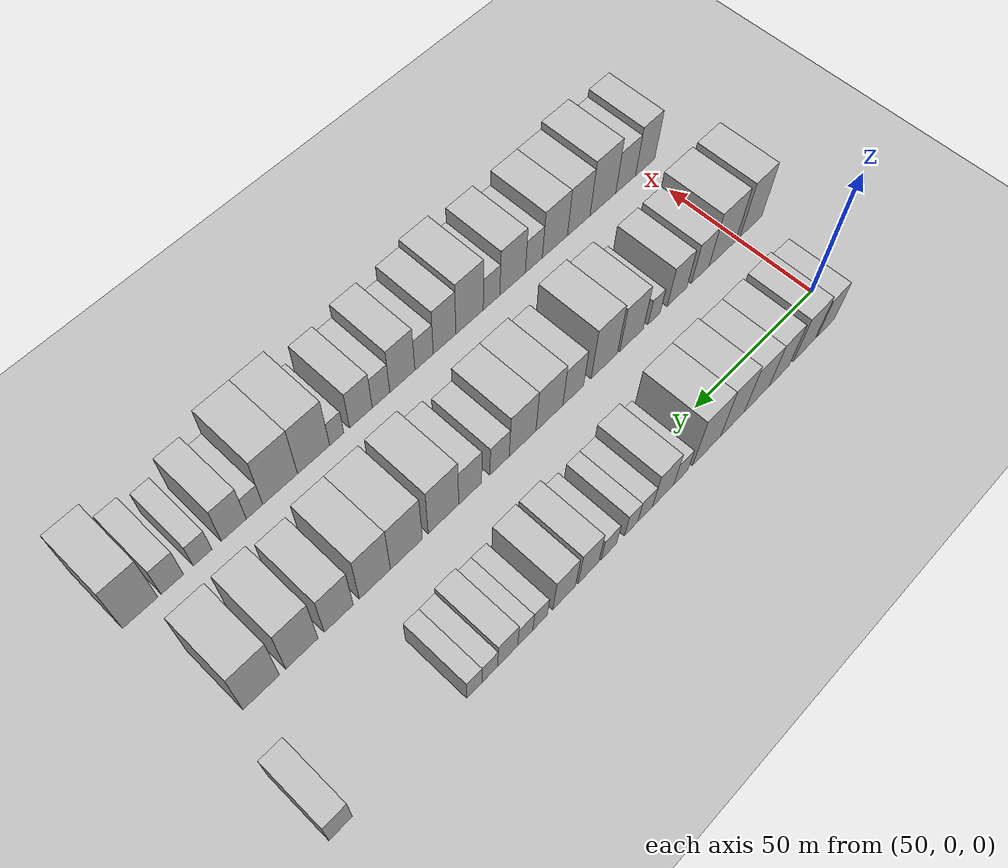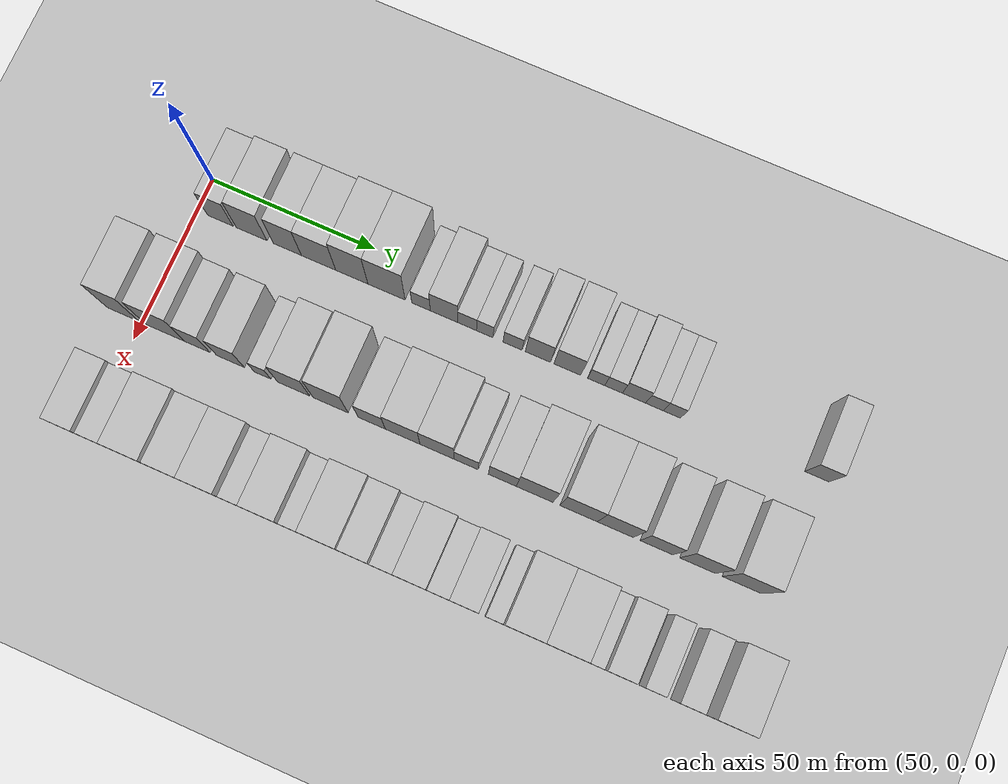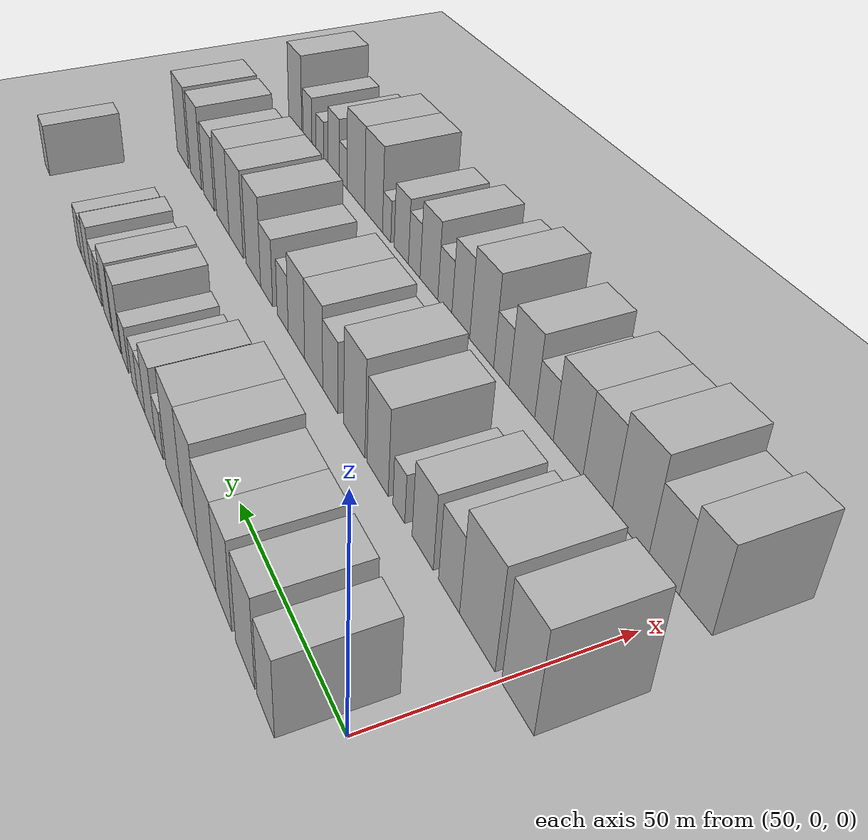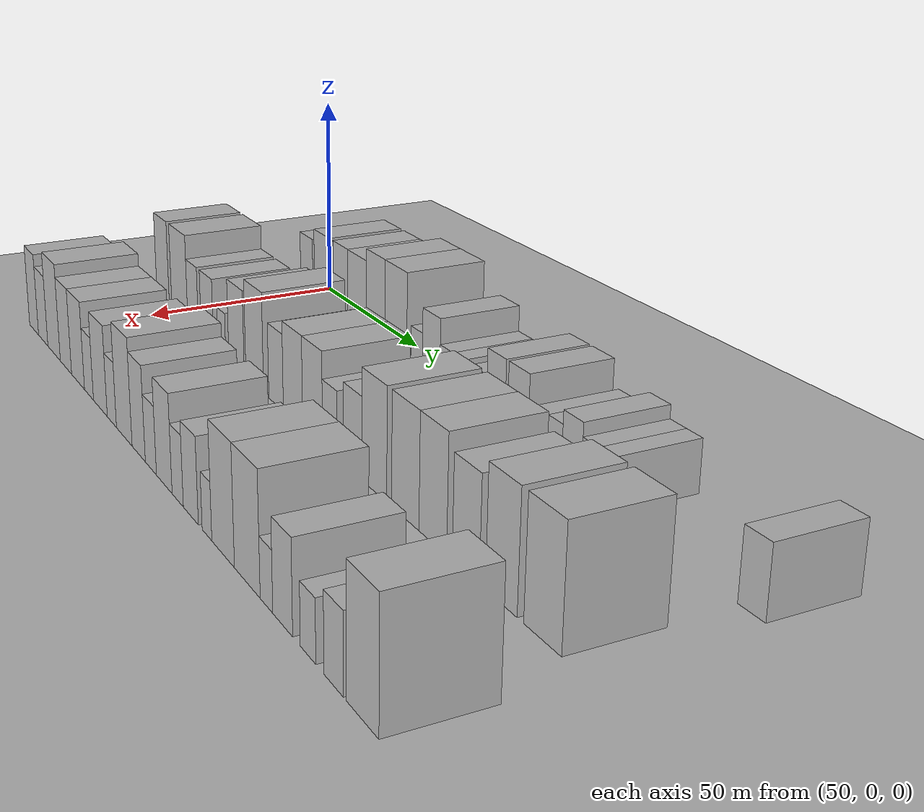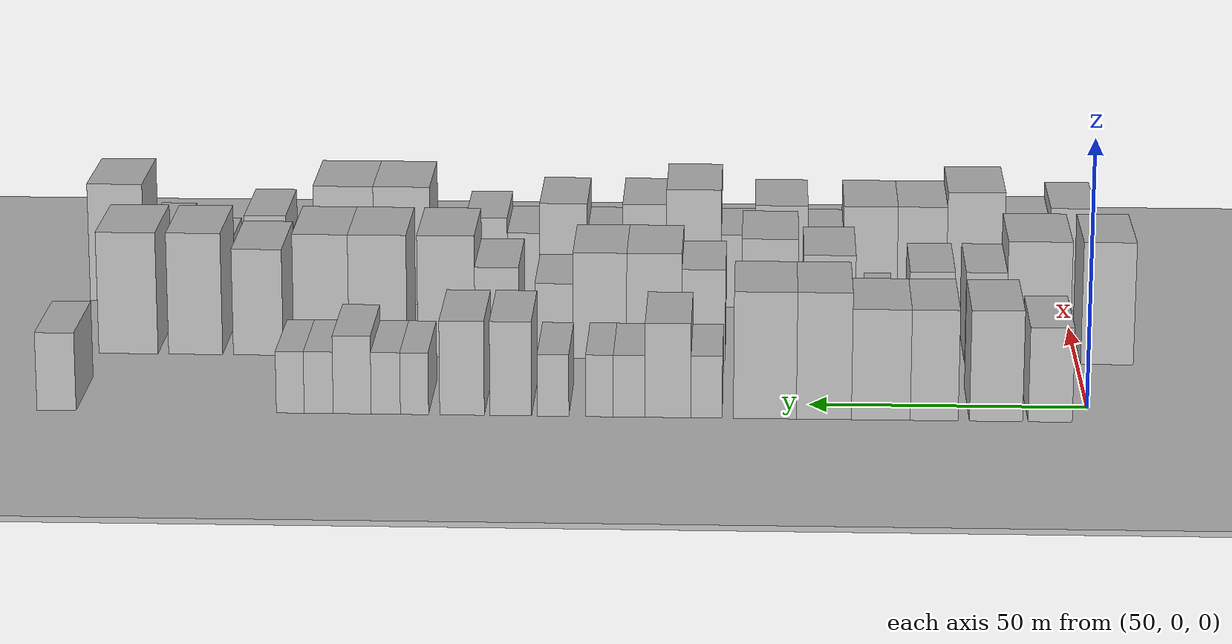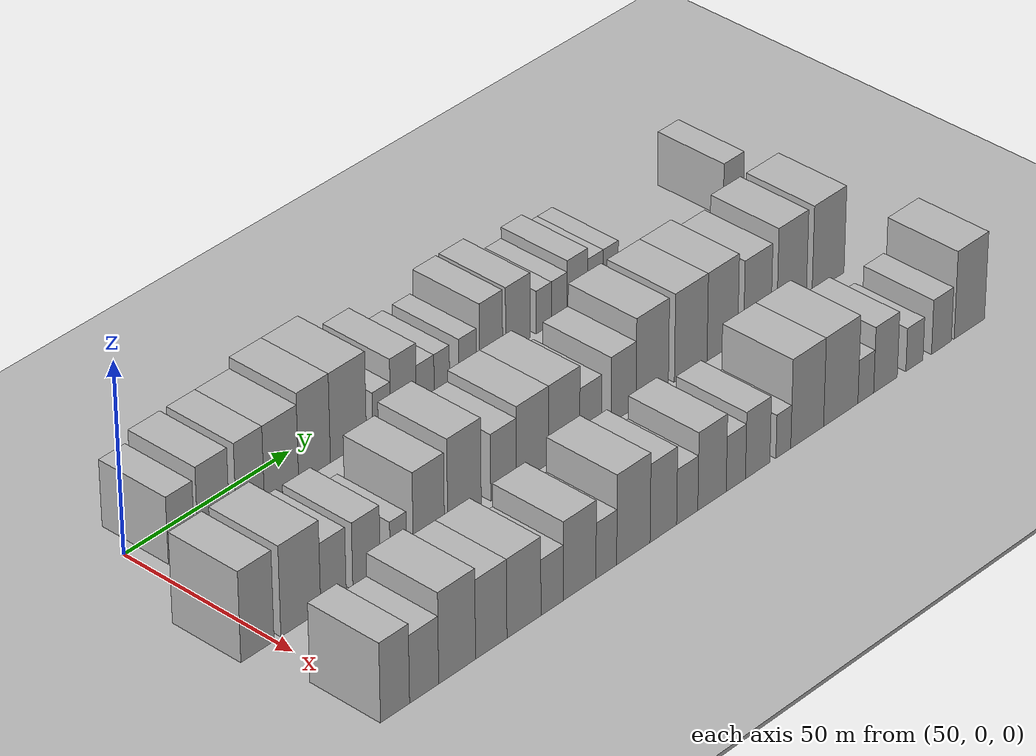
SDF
<sdf version="1.6">
 <world name="default">
  <include><name>ground_plane_1</name><uri>model://HANNAS_ground_plane</uri></include>
  <include>
   <name>ground_plane_2</name>
   <uri>model://HANNAS_ground_plane</uri>
   <pose>100 0 0  0 0 0</pose>
  </include>
  <model name="building_38">
   <static>1</static>
   <pose>50.0000 7.3286 0 0.000000 0.000000 0.000000</pose>
   <link name="link">
    <pose>0 0 9.00 0 0 0</pose>
    <collision name="collision"><geometry><box><size>20.0000 7.8199 18.0000</size></box></geometry></collision>
    <visual name="visual">
     <cast_shadows>0</cast_shadows>
     <geometry><box><size>20.0000 7.8199 18.0000</size></box></geometry>
     <material>
      <script>
       <uri>model://HANNAS_wall/materials/scripts</uri>
       <uri>model://HANNAS_wall/materials/textures</uri>
       <name>vrc/HANNAS_wall</name>
      </script>
     </material>
    </visual>
   </link>
  </model>
  <model name="building_39">
   <static>1</static>
   <pose>50.0000 16.9581 0 0.000000 0.000000 0.000000</pose>
   <link name="link">
    <pose>0 0 10.50 0 0 0</pose>
    <collision name="collision"><geometry><box><size>20.0000 9.4390 21.0000</size></box></geometry></collision>
    <visual name="visual">
     <cast_shadows>0</cast_shadows>
     <geometry><box><size>20.0000 9.4390 21.0000</size></box></geometry>
     <material>
      <script>
       <uri>model://HANNAS_wall/materials/scripts</uri>
       <uri>model://HANNAS_wall/materials/textures</uri>
       <name>vrc/HANNAS_wall</name>
      </script>
     </material>
    </visual>
   </link>
  </model>
  <model name="building_40">
   <static>1</static>
   <pose>50.0000 27.9393 0 0.000000 0.000000 0.000000</pose>
   <link name="link">
    <pose>0 0 10.50 0 0 0</pose>
    <collision name="collision"><geometry><box><size>20.0000 8.5234 21.0000</size></box></geometry></collision>
    <visual name="visual">
     <cast_shadows>0</cast_shadows>
     <geometry><box><size>20.0000 8.5234 21.0000</size></box></geometry>
     <material>
      <script>
       <uri>model://HANNAS_wall/materials/scripts</uri>
       <uri>model://HANNAS_wall/materials/textures</uri>
       <name>vrc/HANNAS_wall</name>
      </script>
     </material>
    </visual>
   </link>
  </model>
  <model name="building_41">
   <static>1</static>
   <pose>50.0000 37.4314 0 0.000000 0.000000 0.000000</pose>
   <link name="link">
    <pose>0 0 10.50 0 0 0</pose>
    <collision name="collision"><geometry><box><size>20.0000 10.4609 21.0000</size></box></geometry></collision>
    <visual name="visual">
     <cast_shadows>0</cast_shadows>
     <geometry><box><size>20.0000 10.4609 21.0000</size></box></geometry>
     <material>
      <script>
       <uri>model://HANNAS_wall/materials/scripts</uri>
       <uri>model://HANNAS_wall/materials/textures</uri>
       <name>vrc/HANNAS_wall</name>
      </script>
     </material>
    </visual>
   </link>
  </model>
  <model name="building_42">
   <static>1</static>
   <pose>50.0000 47.5673 0 0.000000 0.000000 0.000000</pose>
   <link name="link">
    <pose>0 0 12.00 0 0 0</pose>
    <collision name="collision"><geometry><box><size>20.0000 9.8109 24.0000</size></box></geometry></collision>
    <visual name="visual">
     <cast_shadows>0</cast_shadows>
     <geometry><box><size>20.0000 9.8109 24.0000</size></box></geometry>
     <material>
      <script>
       <uri>model://HANNAS_wall/materials/scripts</uri>
       <uri>model://HANNAS_wall/materials/textures</uri>
       <name>vrc/HANNAS_wall</name>
      </script>
     </material>
    </visual>
   </link>
  </model>
  <model name="building_43">
   <static>1</static>
   <pose>50.0000 58.0806 0 0.000000 0.000000 0.000000</pose>
   <link name="link">
    <pose>0 0 12.00 0 0 0</pose>
    <collision name="collision"><geometry><box><size>20.0000 11.2156 24.0000</size></box></geometry></collision>
    <visual name="visual">
     <cast_shadows>0</cast_shadows>
     <geometry><box><size>20.0000 11.2156 24.0000</size></box></geometry>
     <material>
      <script>
       <uri>model://HANNAS_wall/materials/scripts</uri>
       <uri>model://HANNAS_wall/materials/textures</uri>
       <name>vrc/HANNAS_wall</name>
      </script>
     </material>
    </visual>
   </link>
  </model>
  <model name="building_44">
   <static>1</static>
   <pose>50.0000 68.4880 0 0.000000 0.000000 0.000000</pose>
   <link name="link">
    <pose>0 0 6.00 0 0 0</pose>
    <collision name="collision"><geometry><box><size>20.0000 5.5991 12.0000</size></box></geometry></collision>
    <visual name="visual">
     <cast_shadows>0</cast_shadows>
     <geometry><box><size>20.0000 5.5991 12.0000</size></box></geometry>
     <material>
      <script>
       <uri>model://HANNAS_wall/materials/scripts</uri>
       <uri>model://HANNAS_wall/materials/textures</uri>
       <name>vrc/HANNAS_wall</name>
      </script>
     </material>
    </visual>
   </link>
  </model>
  <model name="building_45">
   <static>1</static>
   <pose>50.0000 75.3847 0 0.000000 0.000000 0.000000</pose>
   <link name="link">
    <pose>0 0 9.00 0 0 0</pose>
    <collision name="collision"><geometry><box><size>20.0000 8.1942 18.0000</size></box></geometry></collision>
    <visual name="visual">
     <cast_shadows>0</cast_shadows>
     <geometry><box><size>20.0000 8.1942 18.0000</size></box></geometry>
     <material>
      <script>
       <uri>model://HANNAS_wall/materials/scripts</uri>
       <uri>model://HANNAS_wall/materials/textures</uri>
       <name>vrc/HANNAS_wall</name>
      </script>
     </material>
    </visual>
   </link>
  </model>
  <model name="building_46">
   <static>1</static>
   <pose>50.0000 82.3101 0 0.000000 0.000000 0.000000</pose>
   <link name="link">
    <pose>0 0 6.00 0 0 0</pose>
    <collision name="collision"><geometry><box><size>20.0000 5.6567 12.0000</size></box></geometry></collision>
    <visual name="visual">
     <cast_shadows>0</cast_shadows>
     <geometry><box><size>20.0000 5.6567 12.0000</size></box></geometry>
     <material>
      <script>
       <uri>model://HANNAS_wall/materials/scripts</uri>
       <uri>model://HANNAS_wall/materials/textures</uri>
       <name>vrc/HANNAS_wall</name>
      </script>
     </material>
    </visual>
   </link>
  </model>
  <model name="building_47">
   <static>1</static>
   <pose>50.0000 87.6006 0 0.000000 0.000000 0.000000</pose>
   <link name="link">
    <pose>0 0 6.00 0 0 0</pose>
    <collision name="collision"><geometry><box><size>20.0000 4.9241 12.0000</size></box></geometry></collision>
    <visual name="visual">
     <cast_shadows>0</cast_shadows>
     <geometry><box><size>20.0000 4.9241 12.0000</size></box></geometry>
     <material>
      <script>
       <uri>model://HANNAS_wall/materials/scripts</uri>
       <uri>model://HANNAS_wall/materials/textures</uri>
       <name>vrc/HANNAS_wall</name>
      </script>
     </material>
    </visual>
   </link>
  </model>
  <model name="building_48">
   <static>1</static>
   <pose>50.0000 95.8957 0 0.000000 0.000000 0.000000</pose>
   <link name="link">
    <pose>0 0 6.00 0 0 0</pose>
    <collision name="collision"><geometry><box><size>20.0000 5.6661 12.0000</size></box></geometry></collision>
    <visual name="visual">
     <cast_shadows>0</cast_shadows>
     <geometry><box><size>20.0000 5.6661 12.0000</size></box></geometry>
     <material>
      <script>
       <uri>model://HANNAS_wall/materials/scripts</uri>
       <uri>model://HANNAS_wall/materials/textures</uri>
       <name>vrc/HANNAS_wall</name>
      </script>
     </material>
    </visual>
   </link>
  </model>
  <model name="building_49">
   <static>1</static>
   <pose>50.0000 103.4634 0 0.000000 0.000000 0.000000</pose>
   <link name="link">
    <pose>0 0 9.00 0 0 0</pose>
    <collision name="collision"><geometry><box><size>20.0000 7.4692 18.0000</size></box></geometry></collision>
    <visual name="visual">
     <cast_shadows>0</cast_shadows>
     <geometry><box><size>20.0000 7.4692 18.0000</size></box></geometry>
     <material>
      <script>
       <uri>model://HANNAS_wall/materials/scripts</uri>
       <uri>model://HANNAS_wall/materials/textures</uri>
       <name>vrc/HANNAS_wall</name>
      </script>
     </material>
    </visual>
   </link>
  </model>
  <model name="building_50">
   <static>1</static>
   <pose>50.0000 112.1897 0 0.000000 0.000000 0.000000</pose>
   <link name="link">
    <pose>0 0 9.00 0 0 0</pose>
    <collision name="collision"><geometry><box><size>20.0000 7.9834 18.0000</size></box></geometry></collision>
    <visual name="visual">
     <cast_shadows>0</cast_shadows>
     <geometry><box><size>20.0000 7.9834 18.0000</size></box></geometry>
     <material>
      <script>
       <uri>model://HANNAS_wall/materials/scripts</uri>
       <uri>model://HANNAS_wall/materials/textures</uri>
       <name>vrc/HANNAS_wall</name>
      </script>
     </material>
    </visual>
   </link>
  </model>
  <model name="building_51">
   <static>1</static>
   <pose>50.0000 120.7090 0 0.000000 0.000000 0.000000</pose>
   <link name="link">
    <pose>0 0 6.00 0 0 0</pose>
    <collision name="collision"><geometry><box><size>20.0000 5.0552 12.0000</size></box></geometry></collision>
    <visual name="visual">
     <cast_shadows>0</cast_shadows>
     <geometry><box><size>20.0000 5.0552 12.0000</size></box></geometry>
     <material>
      <script>
       <uri>model://HANNAS_wall/materials/scripts</uri>
       <uri>model://HANNAS_wall/materials/textures</uri>
       <name>vrc/HANNAS_wall</name>
      </script>
     </material>
    </visual>
   </link>
  </model>
  <model name="building_52">
   <static>1</static>
   <pose>50.0000 125.8475 0 0.000000 0.000000 0.000000</pose>
   <link name="link">
    <pose>0 0 6.00 0 0 0</pose>
    <collision name="collision"><geometry><box><size>20.0000 5.2218 12.0000</size></box></geometry></collision>
    <visual name="visual">
     <cast_shadows>0</cast_shadows>
     <geometry><box><size>20.0000 5.2218 12.0000</size></box></geometry>
     <material>
      <script>
       <uri>model://HANNAS_wall/materials/scripts</uri>
       <uri>model://HANNAS_wall/materials/textures</uri>
       <name>vrc/HANNAS_wall</name>
      </script>
     </material>
    </visual>
   </link>
  </model>
  <model name="building_53">
   <static>1</static>
   <pose>50.0000 131.8721 0 0.000000 0.000000 0.000000</pose>
   <link name="link">
    <pose>0 0 7.50 0 0 0</pose>
    <collision name="collision"><geometry><box><size>20.0000 6.8275 15.0000</size></box></geometry></collision>
    <visual name="visual">
     <cast_shadows>0</cast_shadows>
     <geometry><box><size>20.0000 6.8275 15.0000</size></box></geometry>
     <material>
      <script>
       <uri>model://HANNAS_wall/materials/scripts</uri>
       <uri>model://HANNAS_wall/materials/textures</uri>
       <name>vrc/HANNAS_wall</name>
      </script>
     </material>
    </visual>
   </link>
  </model>
  <model name="building_54">
   <static>1</static>
   <pose>50.0000 137.8904 0 0.000000 0.000000 0.000000</pose>
   <link name="link">
    <pose>0 0 6.00 0 0 0</pose>
    <collision name="collision"><geometry><box><size>20.0000 5.2091 12.0000</size></box></geometry></collision>
    <visual name="visual">
     <cast_shadows>0</cast_shadows>
     <geometry><box><size>20.0000 5.2091 12.0000</size></box></geometry>
     <material>
      <script>
       <uri>model://HANNAS_wall/materials/scripts</uri>
       <uri>model://HANNAS_wall/materials/textures</uri>
       <name>vrc/HANNAS_wall</name>
      </script>
     </material>
    </visual>
   </link>
  </model>
  <model name="building_55">
   <static>1</static>
   <pose>50.0000 142.9968 0 0.000000 0.000000 0.000000</pose>
   <link name="link">
    <pose>0 0 6.00 0 0 0</pose>
    <collision name="collision"><geometry><box><size>20.0000 5.0038 12.0000</size></box></geometry></collision>
    <visual name="visual">
     <cast_shadows>0</cast_shadows>
     <geometry><box><size>20.0000 5.0038 12.0000</size></box></geometry>
     <material>
      <script>
       <uri>model://HANNAS_wall/materials/scripts</uri>
       <uri>model://HANNAS_wall/materials/textures</uri>
       <name>vrc/HANNAS_wall</name>
      </script>
     </material>
    </visual>
   </link>
  </model>
  <model name="building_56">
   <static>1</static>
   <pose>50.0000 185.0853 0 0.000000 0.000000 0.000000</pose>
   <link name="link">
    <pose>0 0 7.50 0 0 0</pose>
    <collision name="collision"><geometry><box><size>20.0000 7.0578 15.0000</size></box></geometry></collision>
    <visual name="visual">
     <cast_shadows>0</cast_shadows>
     <geometry><box><size>20.0000 7.0578 15.0000</size></box></geometry>
     <material>
      <script>
       <uri>model://HANNAS_wall/materials/scripts</uri>
       <uri>model://HANNAS_wall/materials/textures</uri>
       <name>vrc/HANNAS_wall</name>
      </script>
     </material>
    </visual>
   </link>
  </model>
  <model name="building_117">
   <static>1</static>
   <pose>85.0000 -5.4012 0 0.000000 0.000000 0.000000</pose>
   <link name="link">
    <pose>0 0 12.00 0 0 0</pose>
    <collision name="collision"><geometry><box><size>20.0000 9.7538 24.0000</size></box></geometry></collision>
    <visual name="visual">
     <cast_shadows>0</cast_shadows>
     <geometry><box><size>20.0000 9.7538 24.0000</size></box></geometry>
     <material>
      <script>
       <uri>model://HANNAS_wall/materials/scripts</uri>
       <uri>model://HANNAS_wall/materials/textures</uri>
       <name>vrc/HANNAS_wall</name>
      </script>
     </material>
    </visual>
   </link>
  </model>
  <model name="building_118">
   <static>1</static>
   <pose>85.0000 7.4192 0 0.000000 0.000000 0.000000</pose>
   <link name="link">
    <pose>0 0 12.00 0 0 0</pose>
    <collision name="collision"><geometry><box><size>20.0000 11.8870 24.0000</size></box></geometry></collision>
    <visual name="visual">
     <cast_shadows>0</cast_shadows>
     <geometry><box><size>20.0000 11.8870 24.0000</size></box></geometry>
     <material>
      <script>
       <uri>model://HANNAS_wall/materials/scripts</uri>
       <uri>model://HANNAS_wall/materials/textures</uri>
       <name>vrc/HANNAS_wall</name>
      </script>
     </material>
    </visual>
   </link>
  </model>
  <model name="building_119">
   <static>1</static>
   <pose>85.0000 17.1831 0 0.000000 0.000000 0.000000</pose>
   <link name="link">
    <pose>0 0 9.00 0 0 0</pose>
    <collision name="collision"><geometry><box><size>20.0000 7.6409 18.0000</size></box></geometry></collision>
    <visual name="visual">
     <cast_shadows>0</cast_shadows>
     <geometry><box><size>20.0000 7.6409 18.0000</size></box></geometry>
     <material>
      <script>
       <uri>model://HANNAS_wall/materials/scripts</uri>
       <uri>model://HANNAS_wall/materials/textures</uri>
       <name>vrc/HANNAS_wall</name>
      </script>
     </material>
    </visual>
   </link>
  </model>
  <model name="building_120">
   <static>1</static>
   <pose>85.0000 27.1777 0 0.000000 0.000000 0.000000</pose>
   <link name="link">
    <pose>0 0 9.00 0 0 0</pose>
    <collision name="collision"><geometry><box><size>20.0000 8.3483 18.0000</size></box></geometry></collision>
    <visual name="visual">
     <cast_shadows>0</cast_shadows>
     <geometry><box><size>20.0000 8.3483 18.0000</size></box></geometry>
     <material>
      <script>
       <uri>model://HANNAS_wall/materials/scripts</uri>
       <uri>model://HANNAS_wall/materials/textures</uri>
       <name>vrc/HANNAS_wall</name>
      </script>
     </material>
    </visual>
   </link>
  </model>
  <model name="building_121">
   <static>1</static>
   <pose>85.0000 36.8755 0 0.000000 0.000000 0.000000</pose>
   <link name="link">
    <pose>0 0 6.00 0 0 0</pose>
    <collision name="collision"><geometry><box><size>20.0000 5.0473 12.0000</size></box></geometry></collision>
    <visual name="visual">
     <cast_shadows>0</cast_shadows>
     <geometry><box><size>20.0000 5.0473 12.0000</size></box></geometry>
     <material>
      <script>
       <uri>model://HANNAS_wall/materials/scripts</uri>
       <uri>model://HANNAS_wall/materials/textures</uri>
       <name>vrc/HANNAS_wall</name>
      </script>
     </material>
    </visual>
   </link>
  </model>
  <model name="building_122">
   <static>1</static>
   <pose>85.0000 46.2187 0 0.000000 0.000000 0.000000</pose>
   <link name="link">
    <pose>0 0 10.50 0 0 0</pose>
    <collision name="collision"><geometry><box><size>20.0000 9.6391 21.0000</size></box></geometry></collision>
    <visual name="visual">
     <cast_shadows>0</cast_shadows>
     <geometry><box><size>20.0000 9.6391 21.0000</size></box></geometry>
     <material>
      <script>
       <uri>model://HANNAS_wall/materials/scripts</uri>
       <uri>model://HANNAS_wall/materials/textures</uri>
       <name>vrc/HANNAS_wall</name>
      </script>
     </material>
    </visual>
   </link>
  </model>
  <model name="building_123">
   <static>1</static>
   <pose>85.0000 57.2660 0 0.000000 0.000000 0.000000</pose>
   <link name="link">
    <pose>0 0 12.00 0 0 0</pose>
    <collision name="collision"><geometry><box><size>20.0000 10.4556 24.0000</size></box></geometry></collision>
    <visual name="visual">
     <cast_shadows>0</cast_shadows>
     <geometry><box><size>20.0000 10.4556 24.0000</size></box></geometry>
     <material>
      <script>
       <uri>model://HANNAS_wall/materials/scripts</uri>
       <uri>model://HANNAS_wall/materials/textures</uri>
       <name>vrc/HANNAS_wall</name>
      </script>
     </material>
    </visual>
   </link>
  </model>
  <model name="building_124">
   <static>1</static>
   <pose>85.0000 69.5441 0 0.000000 0.000000 0.000000</pose>
   <link name="link">
    <pose>0 0 9.00 0 0 0</pose>
    <collision name="collision"><geometry><box><size>20.0000 8.1005 18.0000</size></box></geometry></collision>
    <visual name="visual">
     <cast_shadows>0</cast_shadows>
     <geometry><box><size>20.0000 8.1005 18.0000</size></box></geometry>
     <material>
      <script>
       <uri>model://HANNAS_wall/materials/scripts</uri>
       <uri>model://HANNAS_wall/materials/textures</uri>
       <name>vrc/HANNAS_wall</name>
      </script>
     </material>
    </visual>
   </link>
  </model>
  <model name="building_125">
   <static>1</static>
   <pose>85.0000 78.7228 0 0.000000 0.000000 0.000000</pose>
   <link name="link">
    <pose>0 0 10.50 0 0 0</pose>
    <collision name="collision"><geometry><box><size>20.0000 10.2570 21.0000</size></box></geometry></collision>
    <visual name="visual">
     <cast_shadows>0</cast_shadows>
     <geometry><box><size>20.0000 10.2570 21.0000</size></box></geometry>
     <material>
      <script>
       <uri>model://HANNAS_wall/materials/scripts</uri>
       <uri>model://HANNAS_wall/materials/textures</uri>
       <name>vrc/HANNAS_wall</name>
      </script>
     </material>
    </visual>
   </link>
  </model>
  <model name="building_126">
   <static>1</static>
   <pose>85.0000 88.8570 0 0.000000 0.000000 0.000000</pose>
   <link name="link">
    <pose>0 0 10.50 0 0 0</pose>
    <collision name="collision"><geometry><box><size>20.0000 10.0114 21.0000</size></box></geometry></collision>
    <visual name="visual">
     <cast_shadows>0</cast_shadows>
     <geometry><box><size>20.0000 10.0114 21.0000</size></box></geometry>
     <material>
      <script>
       <uri>model://HANNAS_wall/materials/scripts</uri>
       <uri>model://HANNAS_wall/materials/textures</uri>
       <name>vrc/HANNAS_wall</name>
      </script>
     </material>
    </visual>
   </link>
  </model>
  <model name="building_127">
   <static>1</static>
   <pose>85.0000 97.4110 0 0.000000 0.000000 0.000000</pose>
   <link name="link">
    <pose>0 0 7.50 0 0 0</pose>
    <collision name="collision"><geometry><box><size>20.0000 7.0967 15.0000</size></box></geometry></collision>
    <visual name="visual">
     <cast_shadows>0</cast_shadows>
     <geometry><box><size>20.0000 7.0967 15.0000</size></box></geometry>
     <material>
      <script>
       <uri>model://HANNAS_wall/materials/scripts</uri>
       <uri>model://HANNAS_wall/materials/textures</uri>
       <name>vrc/HANNAS_wall</name>
      </script>
     </material>
    </visual>
   </link>
  </model>
  <model name="building_128">
   <static>1</static>
   <pose>85.0000 108.0596 0 0.000000 0.000000 0.000000</pose>
   <link name="link">
    <pose>0 0 9.00 0 0 0</pose>
    <collision name="collision"><geometry><box><size>20.0000 8.2004 18.0000</size></box></geometry></collision>
    <visual name="visual">
     <cast_shadows>0</cast_shadows>
     <geometry><box><size>20.0000 8.2004 18.0000</size></box></geometry>
     <material>
      <script>
       <uri>model://HANNAS_wall/materials/scripts</uri>
       <uri>model://HANNAS_wall/materials/textures</uri>
       <name>vrc/HANNAS_wall</name>
      </script>
     </material>
    </visual>
   </link>
  </model>
  <model name="building_129">
   <static>1</static>
   <pose>85.0000 117.5058 0 0.000000 0.000000 0.000000</pose>
   <link name="link">
    <pose>0 0 12.00 0 0 0</pose>
    <collision name="collision"><geometry><box><size>20.0000 10.6919 24.0000</size></box></geometry></collision>
    <visual name="visual">
     <cast_shadows>0</cast_shadows>
     <geometry><box><size>20.0000 10.6919 24.0000</size></box></geometry>
     <material>
      <script>
       <uri>model://HANNAS_wall/materials/scripts</uri>
       <uri>model://HANNAS_wall/materials/textures</uri>
       <name>vrc/HANNAS_wall</name>
      </script>
     </material>
    </visual>
   </link>
  </model>
  <model name="building_130">
   <static>1</static>
   <pose>85.0000 130.2972 0 0.000000 0.000000 0.000000</pose>
   <link name="link">
    <pose>0 0 12.00 0 0 0</pose>
    <collision name="collision"><geometry><box><size>20.0000 10.8909 24.0000</size></box></geometry></collision>
    <visual name="visual">
     <cast_shadows>0</cast_shadows>
     <geometry><box><size>20.0000 10.8909 24.0000</size></box></geometry>
     <material>
      <script>
       <uri>model://HANNAS_wall/materials/scripts</uri>
       <uri>model://HANNAS_wall/materials/textures</uri>
       <name>vrc/HANNAS_wall</name>
      </script>
     </material>
    </visual>
   </link>
  </model>
  <model name="building_131">
   <static>1</static>
   <pose>85.0000 140.9189 0 0.000000 0.000000 0.000000</pose>
   <link name="link">
    <pose>0 0 12.00 0 0 0</pose>
    <collision name="collision"><geometry><box><size>20.0000 10.3524 24.0000</size></box></geometry></collision>
    <visual name="visual">
     <cast_shadows>0</cast_shadows>
     <geometry><box><size>20.0000 10.3524 24.0000</size></box></geometry>
     <material>
      <script>
       <uri>model://HANNAS_wall/materials/scripts</uri>
       <uri>model://HANNAS_wall/materials/textures</uri>
       <name>vrc/HANNAS_wall</name>
      </script>
     </material>
    </visual>
   </link>
  </model>
  <model name="building_132">
   <static>1</static>
   <pose>85.0000 152.7845 0 0.000000 0.000000 0.000000</pose>
   <link name="link">
    <pose>0 0 10.50 0 0 0</pose>
    <collision name="collision"><geometry><box><size>20.0000 9.3790 21.0000</size></box></geometry></collision>
    <visual name="visual">
     <cast_shadows>0</cast_shadows>
     <geometry><box><size>20.0000 9.3790 21.0000</size></box></geometry>
     <material>
      <script>
       <uri>model://HANNAS_wall/materials/scripts</uri>
       <uri>model://HANNAS_wall/materials/textures</uri>
       <name>vrc/HANNAS_wall</name>
      </script>
     </material>
    </visual>
   </link>
  </model>
  <model name="building_133">
   <static>1</static>
   <pose>85.0000 164.5537 0 0.000000 0.000000 0.000000</pose>
   <link name="link">
    <pose>0 0 12.00 0 0 0</pose>
    <collision name="collision"><geometry><box><size>20.0000 10.1594 24.0000</size></box></geometry></collision>
    <visual name="visual">
     <cast_shadows>0</cast_shadows>
     <geometry><box><size>20.0000 10.1594 24.0000</size></box></geometry>
     <material>
      <script>
       <uri>model://HANNAS_wall/materials/scripts</uri>
       <uri>model://HANNAS_wall/materials/textures</uri>
       <name>vrc/HANNAS_wall</name>
      </script>
     </material>
    </visual>
   </link>
  </model>
  <model name="building_134">
   <static>1</static>
   <pose>85.0000 177.1973 0 0.000000 0.000000 0.000000</pose>
   <link name="link">
    <pose>0 0 12.00 0 0 0</pose>
    <collision name="collision"><geometry><box><size>20.0000 11.1279 24.0000</size></box></geometry></collision>
    <visual name="visual">
     <cast_shadows>0</cast_shadows>
     <geometry><box><size>20.0000 11.1279 24.0000</size></box></geometry>
     <material>
      <script>
       <uri>model://HANNAS_wall/materials/scripts</uri>
       <uri>model://HANNAS_wall/materials/textures</uri>
       <name>vrc/HANNAS_wall</name>
      </script>
     </material>
    </visual>
   </link>
  </model>
  <model name="building_196">
   <static>1</static>
   <pose>120.0000 -1.0528 0 0.000000 0.000000 0.000000</pose>
   <link name="link">
    <pose>0 0 10.50 0 0 0</pose>
    <collision name="collision"><geometry><box><size>20.0000 8.6083 21.0000</size></box></geometry></collision>
    <visual name="visual">
     <cast_shadows>0</cast_shadows>
     <geometry><box><size>20.0000 8.6083 21.0000</size></box></geometry>
     <material>
      <script>
       <uri>model://HANNAS_wall/materials/scripts</uri>
       <uri>model://HANNAS_wall/materials/textures</uri>
       <name>vrc/HANNAS_wall</name>
      </script>
     </material>
    </visual>
   </link>
  </model>
  <model name="building_197">
   <static>1</static>
   <pose>120.0000 7.5959 0 0.000000 0.000000 0.000000</pose>
   <link name="link">
    <pose>0 0 9.00 0 0 0</pose>
    <collision name="collision"><geometry><box><size>20.0000 8.6891 18.0000</size></box></geometry></collision>
    <visual name="visual">
     <cast_shadows>0</cast_shadows>
     <geometry><box><size>20.0000 8.6891 18.0000</size></box></geometry>
     <material>
      <script>
       <uri>model://HANNAS_wall/materials/scripts</uri>
       <uri>model://HANNAS_wall/materials/textures</uri>
       <name>vrc/HANNAS_wall</name>
      </script>
     </material>
    </visual>
   </link>
  </model>
  <model name="building_198">
   <static>1</static>
   <pose>120.0000 17.4811 0 0.000000 0.000000 0.000000</pose>
   <link name="link">
    <pose>0 0 12.00 0 0 0</pose>
    <collision name="collision"><geometry><box><size>20.0000 11.0813 24.0000</size></box></geometry></collision>
    <visual name="visual">
     <cast_shadows>0</cast_shadows>
     <geometry><box><size>20.0000 11.0813 24.0000</size></box></geometry>
     <material>
      <script>
       <uri>model://HANNAS_wall/materials/scripts</uri>
       <uri>model://HANNAS_wall/materials/textures</uri>
       <name>vrc/HANNAS_wall</name>
      </script>
     </material>
    </visual>
   </link>
  </model>
  <model name="building_199">
   <static>1</static>
   <pose>120.0000 27.7949 0 0.000000 0.000000 0.000000</pose>
   <link name="link">
    <pose>0 0 10.50 0 0 0</pose>
    <collision name="collision"><geometry><box><size>20.0000 9.5464 21.0000</size></box></geometry></collision>
    <visual name="visual">
     <cast_shadows>0</cast_shadows>
     <geometry><box><size>20.0000 9.5464 21.0000</size></box></geometry>
     <material>
      <script>
       <uri>model://HANNAS_wall/materials/scripts</uri>
       <uri>model://HANNAS_wall/materials/textures</uri>
       <name>vrc/HANNAS_wall</name>
      </script>
     </material>
    </visual>
   </link>
  </model>
  <model name="building_200">
   <static>1</static>
   <pose>120.0000 37.7803 0 0.000000 0.000000 0.000000</pose>
   <link name="link">
    <pose>0 0 10.50 0 0 0</pose>
    <collision name="collision"><geometry><box><size>20.0000 10.4243 21.0000</size></box></geometry></collision>
    <visual name="visual">
     <cast_shadows>0</cast_shadows>
     <geometry><box><size>20.0000 10.4243 21.0000</size></box></geometry>
     <material>
      <script>
       <uri>model://HANNAS_wall/materials/scripts</uri>
       <uri>model://HANNAS_wall/materials/textures</uri>
       <name>vrc/HANNAS_wall</name>
      </script>
     </material>
    </visual>
   </link>
  </model>
  <model name="building_201">
   <static>1</static>
   <pose>120.0000 46.4584 0 0.000000 0.000000 0.000000</pose>
   <link name="link">
    <pose>0 0 7.50 0 0 0</pose>
    <collision name="collision"><geometry><box><size>20.0000 6.9321 15.0000</size></box></geometry></collision>
    <visual name="visual">
     <cast_shadows>0</cast_shadows>
     <geometry><box><size>20.0000 6.9321 15.0000</size></box></geometry>
     <material>
      <script>
       <uri>model://HANNAS_wall/materials/scripts</uri>
       <uri>model://HANNAS_wall/materials/textures</uri>
       <name>vrc/HANNAS_wall</name>
      </script>
     </material>
    </visual>
   </link>
  </model>
  <model name="building_202">
   <static>1</static>
   <pose>120.0000 55.0298 0 0.000000 0.000000 0.000000</pose>
   <link name="link">
    <pose>0 0 10.50 0 0 0</pose>
    <collision name="collision"><geometry><box><size>20.0000 10.2107 21.0000</size></box></geometry></collision>
    <visual name="visual">
     <cast_shadows>0</cast_shadows>
     <geometry><box><size>20.0000 10.2107 21.0000</size></box></geometry>
     <material>
      <script>
       <uri>model://HANNAS_wall/materials/scripts</uri>
       <uri>model://HANNAS_wall/materials/textures</uri>
       <name>vrc/HANNAS_wall</name>
      </script>
     </material>
    </visual>
   </link>
  </model>
  <model name="building_203">
   <static>1</static>
   <pose>120.0000 63.3893 0 0.000000 0.000000 0.000000</pose>
   <link name="link">
    <pose>0 0 7.50 0 0 0</pose>
    <collision name="collision"><geometry><box><size>20.0000 6.5083 15.0000</size></box></geometry></collision>
    <visual name="visual">
     <cast_shadows>0</cast_shadows>
     <geometry><box><size>20.0000 6.5083 15.0000</size></box></geometry>
     <material>
      <script>
       <uri>model://HANNAS_wall/materials/scripts</uri>
       <uri>model://HANNAS_wall/materials/textures</uri>
       <name>vrc/HANNAS_wall</name>
      </script>
     </material>
    </visual>
   </link>
  </model>
  <model name="building_204">
   <static>1</static>
   <pose>120.0000 71.9464 0 0.000000 0.000000 0.000000</pose>
   <link name="link">
    <pose>0 0 12.00 0 0 0</pose>
    <collision name="collision"><geometry><box><size>20.0000 10.6059 24.0000</size></box></geometry></collision>
    <visual name="visual">
     <cast_shadows>0</cast_shadows>
     <geometry><box><size>20.0000 10.6059 24.0000</size></box></geometry>
     <material>
      <script>
       <uri>model://HANNAS_wall/materials/scripts</uri>
       <uri>model://HANNAS_wall/materials/textures</uri>
       <name>vrc/HANNAS_wall</name>
      </script>
     </material>
    </visual>
   </link>
  </model>
  <model name="building_205">
   <static>1</static>
   <pose>120.0000 81.5005 0 0.000000 0.000000 0.000000</pose>
   <link name="link">
    <pose>0 0 10.50 0 0 0</pose>
    <collision name="collision"><geometry><box><size>20.0000 8.5023 21.0000</size></box></geometry></collision>
    <visual name="visual">
     <cast_shadows>0</cast_shadows>
     <geometry><box><size>20.0000 8.5023 21.0000</size></box></geometry>
     <material>
      <script>
       <uri>model://HANNAS_wall/materials/scripts</uri>
       <uri>model://HANNAS_wall/materials/textures</uri>
       <name>vrc/HANNAS_wall</name>
      </script>
     </material>
    </visual>
   </link>
  </model>
  <model name="building_206">
   <static>1</static>
   <pose>120.0000 89.1711 0 0.000000 0.000000 0.000000</pose>
   <link name="link">
    <pose>0 0 7.50 0 0 0</pose>
    <collision name="collision"><geometry><box><size>20.0000 6.8389 15.0000</size></box></geometry></collision>
    <visual name="visual">
     <cast_shadows>0</cast_shadows>
     <geometry><box><size>20.0000 6.8389 15.0000</size></box></geometry>
     <material>
      <script>
       <uri>model://HANNAS_wall/materials/scripts</uri>
       <uri>model://HANNAS_wall/materials/textures</uri>
       <name>vrc/HANNAS_wall</name>
      </script>
     </material>
    </visual>
   </link>
  </model>
  <model name="building_207">
   <static>1</static>
   <pose>120.0000 97.2006 0 0.000000 0.000000 0.000000</pose>
   <link name="link">
    <pose>0 0 10.50 0 0 0</pose>
    <collision name="collision"><geometry><box><size>20.0000 9.2201 21.0000</size></box></geometry></collision>
    <visual name="visual">
     <cast_shadows>0</cast_shadows>
     <geometry><box><size>20.0000 9.2201 21.0000</size></box></geometry>
     <material>
      <script>
       <uri>model://HANNAS_wall/materials/scripts</uri>
       <uri>model://HANNAS_wall/materials/textures</uri>
       <name>vrc/HANNAS_wall</name>
      </script>
     </material>
    </visual>
   </link>
  </model>
  <model name="building_208">
   <static>1</static>
   <pose>120.0000 104.9711 0 0.000000 0.000000 0.000000</pose>
   <link name="link">
    <pose>0 0 7.50 0 0 0</pose>
    <collision name="collision"><geometry><box><size>20.0000 6.3209 15.0000</size></box></geometry></collision>
    <visual name="visual">
     <cast_shadows>0</cast_shadows>
     <geometry><box><size>20.0000 6.3209 15.0000</size></box></geometry>
     <material>
      <script>
       <uri>model://HANNAS_wall/materials/scripts</uri>
       <uri>model://HANNAS_wall/materials/textures</uri>
       <name>vrc/HANNAS_wall</name>
      </script>
     </material>
    </visual>
   </link>
  </model>
  <model name="building_209">
   <static>1</static>
   <pose>120.0000 112.1640 0 0.000000 0.000000 0.000000</pose>
   <link name="link">
    <pose>0 0 9.00 0 0 0</pose>
    <collision name="collision"><geometry><box><size>20.0000 8.0649 18.0000</size></box></geometry></collision>
    <visual name="visual">
     <cast_shadows>0</cast_shadows>
     <geometry><box><size>20.0000 8.0649 18.0000</size></box></geometry>
     <material>
      <script>
       <uri>model://HANNAS_wall/materials/scripts</uri>
       <uri>model://HANNAS_wall/materials/textures</uri>
       <name>vrc/HANNAS_wall</name>
      </script>
     </material>
    </visual>
   </link>
  </model>
  <model name="building_210">
   <static>1</static>
   <pose>120.0000 120.6647 0 0.000000 0.000000 0.000000</pose>
   <link name="link">
    <pose>0 0 6.00 0 0 0</pose>
    <collision name="collision"><geometry><box><size>20.0000 4.9365 12.0000</size></box></geometry></collision>
    <visual name="visual">
     <cast_shadows>0</cast_shadows>
     <geometry><box><size>20.0000 4.9365 12.0000</size></box></geometry>
     <material>
      <script>
       <uri>model://HANNAS_wall/materials/scripts</uri>
       <uri>model://HANNAS_wall/materials/textures</uri>
       <name>vrc/HANNAS_wall</name>
      </script>
     </material>
    </visual>
   </link>
  </model>
  <model name="building_211">
   <static>1</static>
   <pose>120.0000 128.6336 0 0.000000 0.000000 0.000000</pose>
   <link name="link">
    <pose>0 0 12.00 0 0 0</pose>
    <collision name="collision"><geometry><box><size>20.0000 11.0012 24.0000</size></box></geometry></collision>
    <visual name="visual">
     <cast_shadows>0</cast_shadows>
     <geometry><box><size>20.0000 11.0012 24.0000</size></box></geometry>
     <material>
      <script>
       <uri>model://HANNAS_wall/materials/scripts</uri>
       <uri>model://HANNAS_wall/materials/textures</uri>
       <name>vrc/HANNAS_wall</name>
      </script>
     </material>
    </visual>
   </link>
  </model>
  <model name="building_212">
   <static>1</static>
   <pose>120.0000 139.9476 0 0.000000 0.000000 0.000000</pose>
   <link name="link">
    <pose>0 0 12.00 0 0 0</pose>
    <collision name="collision"><geometry><box><size>20.0000 11.6268 24.0000</size></box></geometry></collision>
    <visual name="visual">
     <cast_shadows>0</cast_shadows>
     <geometry><box><size>20.0000 11.6268 24.0000</size></box></geometry>
     <material>
      <script>
       <uri>model://HANNAS_wall/materials/scripts</uri>
       <uri>model://HANNAS_wall/materials/textures</uri>
       <name>vrc/HANNAS_wall</name>
      </script>
     </material>
    </visual>
   </link>
  </model>
  <model name="building_213">
   <static>1</static>
   <pose>120.0000 148.4471 0 0.000000 0.000000 0.000000</pose>
   <link name="link">
    <pose>0 0 6.00 0 0 0</pose>
    <collision name="collision"><geometry><box><size>20.0000 5.3722 12.0000</size></box></geometry></collision>
    <visual name="visual">
     <cast_shadows>0</cast_shadows>
     <geometry><box><size>20.0000 5.3722 12.0000</size></box></geometry>
     <material>
      <script>
       <uri>model://HANNAS_wall/materials/scripts</uri>
       <uri>model://HANNAS_wall/materials/textures</uri>
       <name>vrc/HANNAS_wall</name>
      </script>
     </material>
    </visual>
   </link>
  </model>
  <model name="building_214">
   <static>1</static>
   <pose>120.0000 155.1764 0 0.000000 0.000000 0.000000</pose>
   <link name="link">
    <pose>0 0 9.00 0 0 0</pose>
    <collision name="collision"><geometry><box><size>20.0000 8.0864 18.0000</size></box></geometry></collision>
    <visual name="visual">
     <cast_shadows>0</cast_shadows>
     <geometry><box><size>20.0000 8.0864 18.0000</size></box></geometry>
     <material>
      <script>
       <uri>model://HANNAS_wall/materials/scripts</uri>
       <uri>model://HANNAS_wall/materials/textures</uri>
       <name>vrc/HANNAS_wall</name>
      </script>
     </material>
    </visual>
   </link>
  </model>
  <model name="building_215">
   <static>1</static>
   <pose>120.0000 165.1686 0 0.000000 0.000000 0.000000</pose>
   <link name="link">
    <pose>0 0 6.00 0 0 0</pose>
    <collision name="collision"><geometry><box><size>20.0000 5.8981 12.0000</size></box></geometry></collision>
    <visual name="visual">
     <cast_shadows>0</cast_shadows>
     <geometry><box><size>20.0000 5.8981 12.0000</size></box></geometry>
     <material>
      <script>
       <uri>model://HANNAS_wall/materials/scripts</uri>
       <uri>model://HANNAS_wall/materials/textures</uri>
       <name>vrc/HANNAS_wall</name>
      </script>
     </material>
    </visual>
   </link>
  </model>
  <model name="building_216">
   <static>1</static>
   <pose>120.0000 174.5731 0 0.000000 0.000000 0.000000</pose>
   <link name="link">
    <pose>0 0 7.50 0 0 0</pose>
    <collision name="collision"><geometry><box><size>20.0000 6.9109 15.0000</size></box></geometry></collision>
    <visual name="visual">
     <cast_shadows>0</cast_shadows>
     <geometry><box><size>20.0000 6.9109 15.0000</size></box></geometry>
     <material>
      <script>
       <uri>model://HANNAS_wall/materials/scripts</uri>
       <uri>model://HANNAS_wall/materials/textures</uri>
       <name>vrc/HANNAS_wall</name>
      </script>
     </material>
    </visual>
   </link>
  </model>
  <model name="building_217">
   <static>1</static>
   <pose>120.0000 184.3866 0 0.000000 0.000000 0.000000</pose>
   <link name="link">
    <pose>0 0 12.00 0 0 0</pose>
    <collision name="collision"><geometry><box><size>20.0000 10.7163 24.0000</size></box></geometry></collision>
    <visual name="visual">
     <cast_shadows>0</cast_shadows>
     <geometry><box><size>20.0000 10.7163 24.0000</size></box></geometry>
     <material>
      <script>
       <uri>model://HANNAS_wall/materials/scripts</uri>
       <uri>model://HANNAS_wall/materials/textures</uri>
       <name>vrc/HANNAS_wall</name>
      </script>
     </material>
    </visual>
   </link>
  </model>
 </world>
</sdf>
